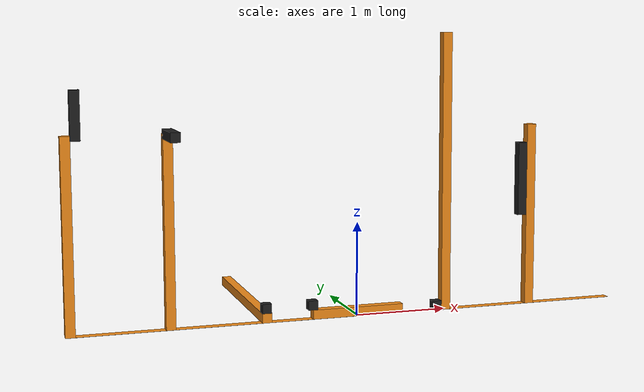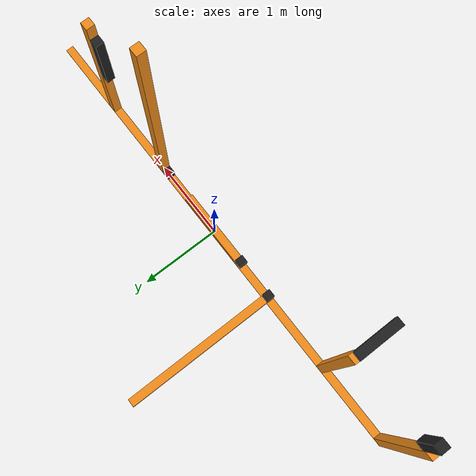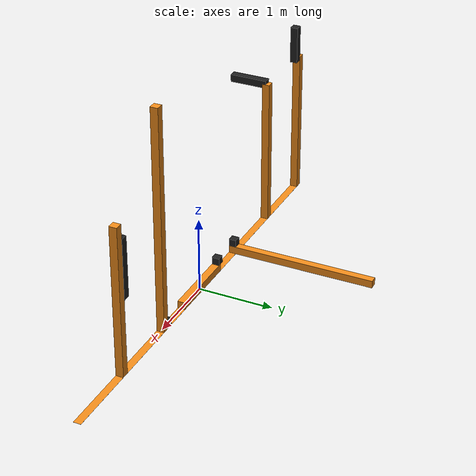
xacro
<?xml version="1.0"?>
<robot name="reachtruck" xmlns:xacro="http://www.ros.org/wiki/xacro">

<!-- define constants -->
<xacro:property name="PI" value="3.1415926" />

<xacro:property name="base_mass" value="5.0" /> <!-- kg -->
<xacro:property name="base_height" value="0.001" />
<xacro:property name="base_width" value="6" />
<xacro:property name="base_depth" value="0.1" />

<xacro:property name="base_trac_mass" value="1.0" /> <!-- kg -->
<xacro:property name="base_trac_height" value="2" />
<xacro:property name="base_trac_width" value="0.1" />
<xacro:property name="base_trac_depth" value="0.1" />

<xacro:property name="trac_mass" value="0.5" /> <!-- kg -->
<xacro:property name="trac_height" value="0.5" />
<xacro:property name="trac_width" value="0.1" />
<xacro:property name="trac_depth" value="0.1" />

<xacro:property name="base_steer_mass" value="1.0" /> <!-- kg -->
<xacro:property name="base_steer_height" value="2" />
<xacro:property name="base_steer_width" value="0.1" />
<xacro:property name="base_steer_depth" value="0.1" />

<xacro:property name="steer_mass" value="0.5" /> <!-- kg -->
<xacro:property name="steer_height" value="0.5" />
<xacro:property name="steer_width" value="0.1" />
<xacro:property name="steer_depth" value="0.1" />

<xacro:property name="base_fork_x_mass" value="1.0" /> <!-- kg -->
<xacro:property name="base_fork_x_height" value="0.1" />
<xacro:property name="base_fork_x_width" value="1" />
<xacro:property name="base_fork_x_depth" value="0.1" />

<xacro:property name="fork_x_mass" value="0.1" /> <!-- kg -->
<xacro:property name="fork_x_height" value="0.1" />
<xacro:property name="fork_x_width" value="0.1" />
<xacro:property name="fork_x_depth" value="0.1" />

<xacro:property name="base_fork_y_mass" value="1.0" /> <!-- kg -->
<xacro:property name="base_fork_y_height" value="0.1" />
<xacro:property name="base_fork_y_width" value="0.1" />
<xacro:property name="base_fork_y_depth" value="2.0" />

<xacro:property name="fork_y_mass" value="0.5" /> <!-- kg -->
<xacro:property name="fork_y_height" value="0.1" />
<xacro:property name="fork_y_width" value="0.1" />
<xacro:property name="fork_y_depth" value="0.1" />

<xacro:property name="base_fork_z_mass" value="1.0" /> <!-- kg -->
<xacro:property name="base_fork_z_height" value="3" />
<xacro:property name="base_fork_z_width" value="0.1" />
<xacro:property name="base_fork_z_depth" value="0.1" />

<xacro:property name="fork_z_mass" value="0.5" /> <!-- kg -->
<xacro:property name="fork_z_height" value="0.1" />
<xacro:property name="fork_z_width" value="0.1" />
<xacro:property name="fork_z_depth" value="0.1" />

<xacro:property name="base_fork_rot_mass" value="1.0" /> <!-- kg -->
<xacro:property name="base_fork_rot_height" value="2" />
<xacro:property name="base_fork_rot_width" value="0.1" />
<xacro:property name="base_fork_rot_depth" value="0.1" />

<xacro:property name="fork_rot_mass" value="0.5" /> <!-- kg -->
<xacro:property name="fork_rot_height" value="0.8" />
<xacro:property name="fork_rot_width" value="0.1" />
<xacro:property name="fork_rot_depth" value="0.1" />

<xacro:property name="gap_lenght" value="0.05" /> <!-- m: distance from joint to side -->

<!-- define macros -->
<xacro:macro name="box_inertia_matrix_" params="m w h d">
  <inertial>
    <mass value="${m}"/>
    <inertia ixx="${m / 12.0 * (d*d + h*h)}" ixy="0.0" ixz="0.0"
             iyy="${m / 12.0 * (w*w + h*h)}" iyz="0.0"
             izz="${m / 12.0 * (w*w + d*d)}"/>
  </inertial>
</xacro:macro>

<xacro:macro name="link_at_base_" params="name m w h d">
<link name="${name}">
 <collision>
    <geometry>
      <box size="${w} ${d} ${h}" />
    </geometry>
    <origin xyz="0 0 ${h/2}" rpy="0 0 0" />
  </collision>

  <visual>
    <geometry>
      <box size="${w} ${d} ${h}" />
    </geometry>
    <origin xyz="0 0 ${h/2}" rpy="0 0 0" />
  </visual>

  <inertial>
    <mass value="${m}"/>
    <inertia ixx="${m / 12.0 * (d*d + h*h)}" ixy="0.0" ixz="0.0"
             iyy="${m / 12.0 * (w*w + h*h)}" iyz="0.0"
             izz="${m / 12.0 * (w*w + d*d)}"/>
  </inertial>
</link>
</xacro:macro>

<!-- define links -->
<link name="world" />

<!-- Base Link-->
<link_at_base_ name="base_link" m="${base_mass}" w="${base_width}" h="${base_height}" d="${base_depth}"/>

<gazebo reference="base_link">
  <material>Gazebo/Orange</material>
</gazebo>

<joint name="ground_joint" type="fixed">  <!-- fix to the ground -->
  <parent link="world" />
  <child link="base_link" />
</joint>

<!-- Base Trac Link-->
<link_at_base_ name="base_trac_link" m="${base_trac_mass}" w="${base_trac_width}" h="${base_trac_height}" d="${base_trac_depth}"/>

<gazebo reference="base_trac_link">
  <material>Gazebo/Orange</material>
</gazebo>

<joint name="base_trac_joint" type="fixed">  <!-- fix to the ground -->
  <parent link="base_link" />
  <child link="base_trac_link" />
  <origin xyz="-3 0 0" rpy="0 0 0" />
  <axis xyz="0 0 0" />
</joint>

<!-- Link Trac -->
<link_at_base_ name="link_trac" m="${trac_mass}" w="${trac_width}" h="${trac_height}" d="${trac_depth}"/>

<gazebo reference="link_trac">
  <material>Gazebo/Black</material>
</gazebo>

<joint name="joint_trac" type="continuous">
  <parent link="base_trac_link" />
  <child link="link_trac" />
  <origin xyz="${base_trac_width} 0 ${base_trac_height - gap_lenght}" rpy="0 0 0" />
  <axis xyz="1 0 0" />
</joint>

<transmission name="tran_trac">
  <type>transmission_interface/SimpleTransmission</type>
  <joint name="joint_trac">
    <hardwareInterface>hardware_interface/VelocityJointInterface</hardwareInterface>
  </joint>
  <actuator name="motor_trac">
    <hardwareInterface>hardware_interface/VelocityJointInterface</hardwareInterface>
    <mechanicalReduction>1</mechanicalReduction>
  </actuator>
</transmission>

<!-- Base Steer Link-->
<link_at_base_ name="base_steer_link" m="${base_steer_mass}" w="${base_steer_width}" h="${base_steer_height}" d="${base_steer_depth}"/>

<gazebo reference="base_steer_link">
  <material>Gazebo/Orange</material>
</gazebo>

<joint name="base_steer_joint" type="fixed">  <!-- fix to the ground -->
  <parent link="base_link" />
  <child link="base_steer_link" />
  <origin xyz="-2 0 0" rpy="0 0 0" />
  <axis xyz="0 0 0" />
</joint>

<!-- Link steer -->
<link_at_base_ name="link_steer" m="${steer_mass}" w="${steer_width}" h="${steer_height}" d="${steer_depth}"/>

<gazebo reference="link_steer">
  <material>Gazebo/Black</material>
</gazebo>

<joint name="joint_steer" type="continuous">
  <parent link="base_steer_link" />
  <child link="link_steer" />
  <origin xyz="0 0 ${base_steer_height}" rpy="${PI/2} 0 0" />
  <axis xyz="0 1 0" />
</joint>

<transmission name="tran_steer">
  <type>transmission_interface/SimpleTransmission</type>
  <joint name="joint_steer">
    <hardwareInterface>hardware_interface/VelocityJointInterface</hardwareInterface>
  </joint>
  <actuator name="motor_steer">
    <hardwareInterface>hardware_interface/VelocityJointInterface</hardwareInterface>
    <mechanicalReduction>1</mechanicalReduction>
  </actuator>
</transmission>

<!-- Base fork_x Link-->
<link_at_base_ name="base_fork_x_link" m="${base_fork_x_mass}" w="${base_fork_x_width}" h="${base_fork_x_height}" d="${base_fork_x_depth}"/>

<gazebo reference="base_fork_x_link">
  <material>Gazebo/Orange</material>
</gazebo>

<joint name="base_fork_x_joint" type="fixed">  <!-- fix to the ground -->
  <parent link="base_link" />
  <child link="base_fork_x_link" />
  <origin xyz="0 0 0" rpy="0 0 0" />
  <axis xyz="0 0 0" />
</joint>

<!-- Link fork_x -->
<link_at_base_ name="link_fork_x" m="${fork_x_mass}" w="${fork_x_width}" h="${fork_x_height}" d="${fork_x_depth}"/>

<gazebo reference="link_fork_x">
  <material>Gazebo/Black</material>
</gazebo>

<joint name="joint_fork_x" type="prismatic">
  <parent link="base_fork_x_link" />
  <child link="link_fork_x" />
  <limit effort="100" velocity="0.2" lower="0" upper="${base_fork_x_width}" />
  <origin xyz="${-base_fork_x_width/2} 0 ${base_fork_x_height}" rpy="0 0 0" />
  <axis xyz="1 0 0" />
</joint>

<transmission name="tran_fork_x">
  <type>transmission_interface/SimpleTransmission</type>
  <joint name="joint_fork_x">
    <hardwareInterface>hardware_interface/VelocityJointInterface</hardwareInterface>
  </joint>
  <actuator name="motor_fork_x">
    <hardwareInterface>hardware_interface/VelocityJointInterface</hardwareInterface>
    <mechanicalReduction>1</mechanicalReduction>
  </actuator>
</transmission>

<!-- Base fork_y Link-->
<link_at_base_ name="base_fork_y_link" m="${base_fork_y_mass}" w="${base_fork_y_width}" h="${base_fork_y_height}" d="${base_fork_y_depth}"/>

<gazebo reference="base_fork_y_link">
  <material>Gazebo/Orange</material>
</gazebo>

<joint name="base_fork_y_joint" type="fixed">  <!-- fix to the ground -->
  <parent link="base_link" />
  <child link="base_fork_y_link" />
  <origin xyz="-1 ${base_fork_y_depth/2 - base_depth/2} 0" rpy="0 0 0" />
  <axis xyz="0 0 0" />
</joint>

<!-- Link fork_y -->
<link_at_base_ name="link_fork_y" m="${fork_y_mass}" w="${fork_y_width}" h="${fork_y_height}" d="${fork_y_depth}"/>

<gazebo reference="link_fork_y">
  <material>Gazebo/Black</material>
</gazebo>

<joint name="joint_fork_y" type="prismatic">
  <parent link="base_fork_y_link" />
  <child link="link_fork_y" />
  <limit effort="100" velocity="0.2" lower="0" upper="${base_fork_y_depth}" />
  <origin xyz="0 ${-base_fork_y_depth/2 + base_depth/2} ${base_fork_y_height}" rpy="0 0 0" />
  <axis xyz="0 1 0" />
</joint>

<transmission name="tran_fork_y">
  <type>transmission_interface/SimpleTransmission</type>
  <joint name="joint_fork_y">
    <hardwareInterface>hardware_interface/VelocityJointInterface</hardwareInterface>
  </joint>
  <actuator name="motor_fork_y">
    <hardwareInterface>hardware_interface/VelocityJointInterface</hardwareInterface>
    <mechanicalReduction>1</mechanicalReduction>
  </actuator>
</transmission>

<!-- Base fork_z Link-->
<link_at_base_ name="base_fork_z_link" m="${base_fork_z_mass}" w="${base_fork_z_width}" h="${base_fork_z_height}" d="${base_fork_z_depth}"/>

<gazebo reference="base_fork_z_link">
  <material>Gazebo/Orange</material>
</gazebo>

<joint name="base_fork_z_joint" type="fixed">  <!-- fix to the ground -->
  <parent link="base_link" />
  <child link="base_fork_z_link" />
  <origin xyz="1 0 0" rpy="0 0 0" />
  <axis xyz="0 0 0" />
</joint>

<!-- Link fork_z -->
<link_at_base_ name="link_fork_z" m="${fork_z_mass}" w="${fork_z_width}" h="${fork_z_height}" d="${fork_z_depth}"/>

<gazebo reference="link_fork_z">
  <material>Gazebo/Black</material>
</gazebo>

<joint name="joint_fork_z" type="prismatic">
  <parent link="base_fork_z_link" />
  <child link="link_fork_z" />
  <limit effort="100" velocity="0.2" lower="0.0" upper="${base_fork_z_height}" />
  <origin xyz="${-base_fork_z_width} 0 0" rpy="0 0 0" />
  <axis xyz="0 0 1" />
</joint>

<transmission name="tran_fork_z">
  <type>transmission_interface/SimpleTransmission</type>
  <joint name="joint_fork_z">
    <hardwareInterface>hardware_interface/VelocityJointInterface</hardwareInterface>
  </joint>
  <actuator name="motor_fork_z">
    <hardwareInterface>hardware_interface/VelocityJointInterface</hardwareInterface>
    <mechanicalReduction>1</mechanicalReduction>
  </actuator>
</transmission>

<!-- Base Fork_rot Link-->
<link_at_base_ name="base_fork_rot_link" m="${base_fork_rot_mass}" w="${base_fork_rot_width}" h="${base_fork_rot_height}" d="${base_fork_rot_depth}"/>

<gazebo reference="base_fork_rot_link">
  <material>Gazebo/Orange</material>
</gazebo>

<joint name="base_fork_rot_joint" type="fixed">  <!-- fix to the ground -->
  <parent link="base_link" />
  <child link="base_fork_rot_link" />
  <origin xyz="2 0 0" rpy="0 0 0" />
  <axis xyz="0 0 0" />
</joint>

<!-- Link Fork_rot -->
<link_at_base_ name="link_fork_rot" m="${fork_rot_mass}" w="${fork_rot_width}" h="${fork_rot_height}" d="${fork_rot_depth}"/>

<gazebo reference="link_fork_rot">
  <material>Gazebo/Black</material>
</gazebo>

<joint name="joint_fork_rot" type="continuous">
  <parent link="base_fork_rot_link" />
  <child link="link_fork_rot" />
  <origin xyz="${-base_fork_rot_width} 0 ${base_fork_rot_height/2}" rpy="0 0 0" />
  <axis xyz="1 0 0" />
</joint>

<transmission name="tran_fork_rot">
  <type>transmission_interface/SimpleTransmission</type>
  <joint name="joint_fork_rot">
    <hardwareInterface>hardware_interface/VelocityJointInterface</hardwareInterface>
  </joint>
  <actuator name="motor_fork_rot">
    <hardwareInterface>hardware_interface/VelocityJointInterface</hardwareInterface>
    <mechanicalReduction>1</mechanicalReduction>
  </actuator>
</transmission>

<!-- ros_control plugin -->
 <gazebo>
   <plugin name="gazebo_ros_control" filename="libgazebo_ros_control.so">
     <robotNamespace>/reachtruck</robotNamespace>
     <robotSimType>gazebo_ros_control/DefaultRobotHWSim</robotSimType>
     <legacyModeNS>true</legacyModeNS>  <!-- KC_DBG : to avoid gazebo version warring-->
   </plugin>
 </gazebo>

</robot>
